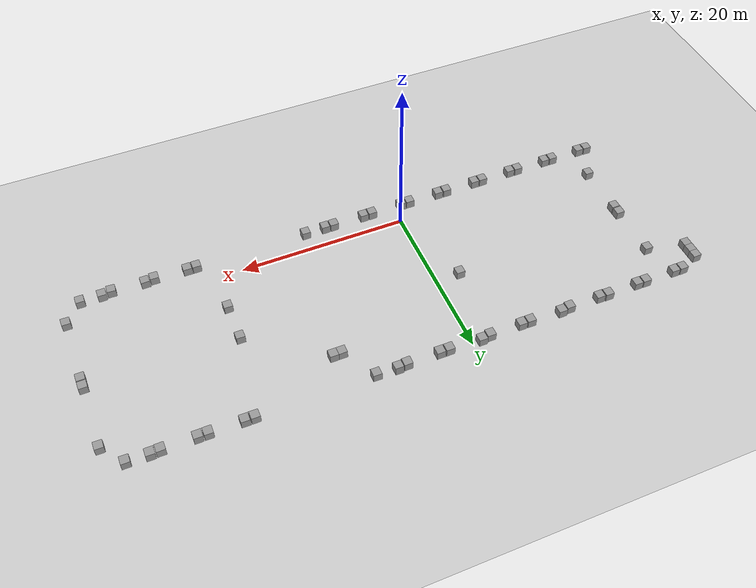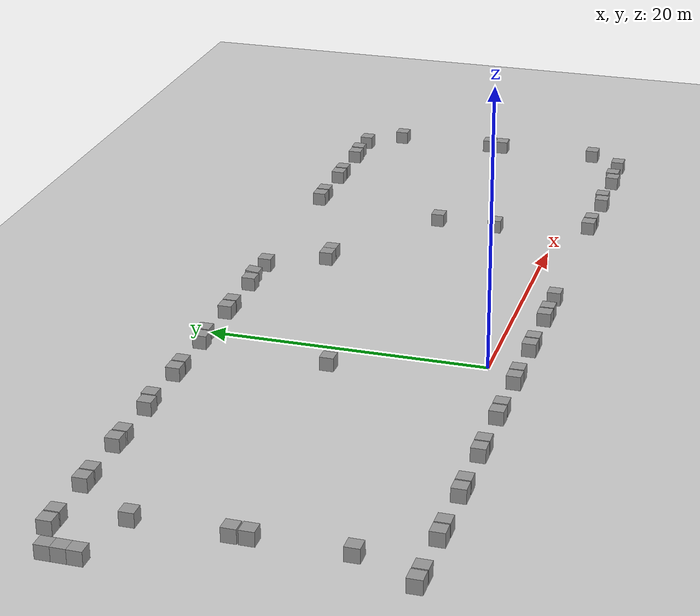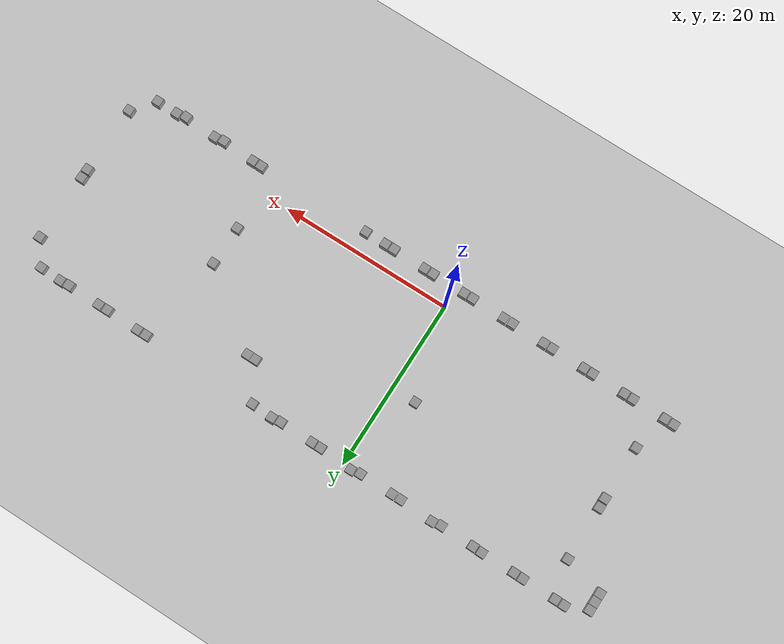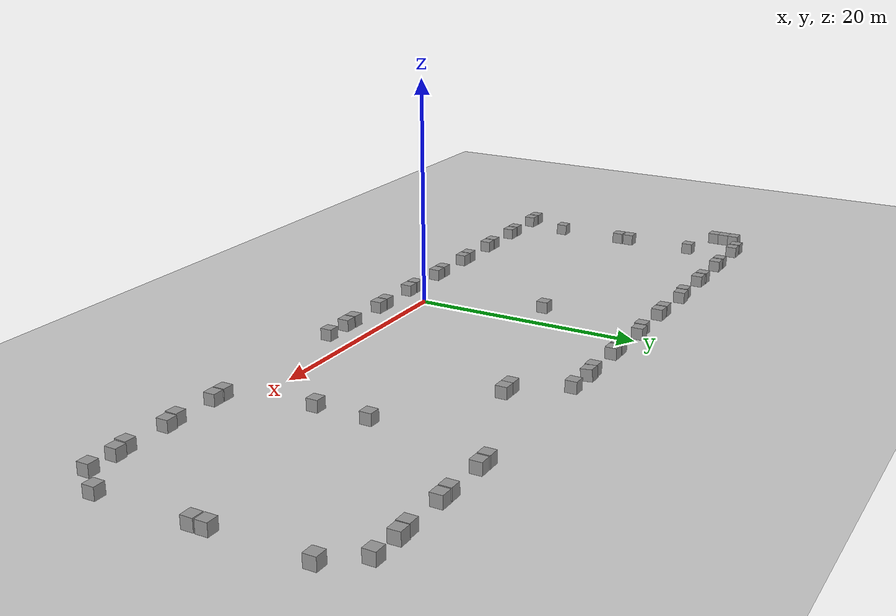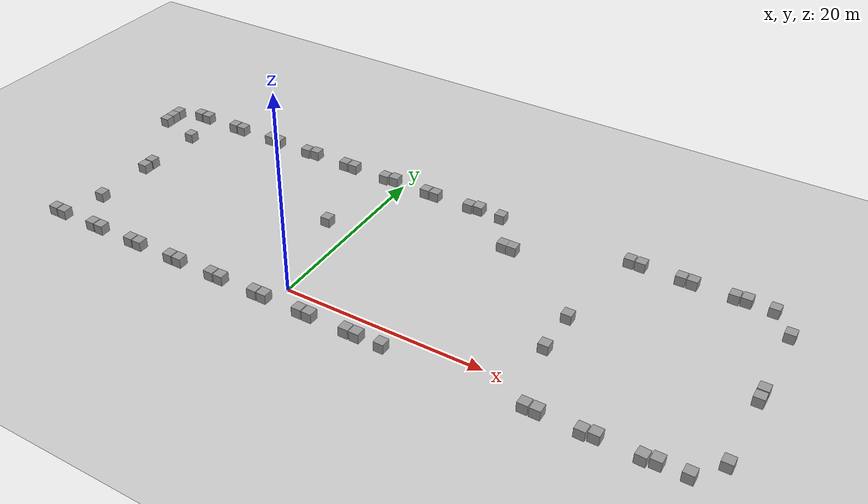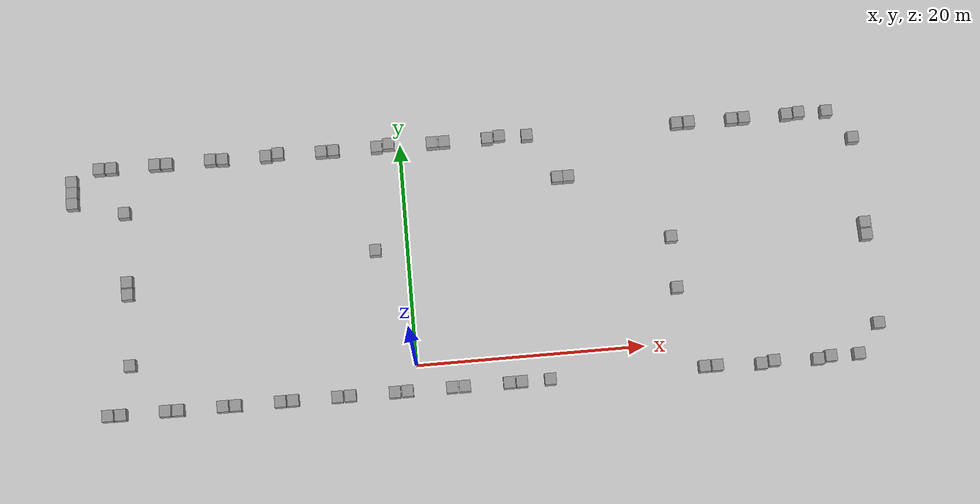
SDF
<sdf version="1.6">
 <world name="default">
  <physics name="default_physics" default="0" type="ode">
   <max_step_size>0.01</max_step_size>
   <real_time_factor>1</real_time_factor>
   <real_time_update_rate>100</real_time_update_rate>
  </physics>
  <model name="ground_plane">
   <static>1</static>
   <link name="link">
    <collision name="collision">
     <geometry><plane><normal>0 0 1</normal><size>100 100</size></plane></geometry>
     <surface><friction><ode><mu>100</mu><mu2>50</mu2></ode></friction></surface>
    </collision>
    <visual name="visual">
     <cast_shadows>0</cast_shadows>
     <geometry><plane><normal>0 0 1</normal><size>100 100</size></plane></geometry>
     <material>
      <script><uri>file://media/materials/scripts/gazebo.material</uri><name>Gazebo/Grey</name></script>
     </material>
    </visual>
   </link>
  </model>
  <light name="sun" type="directional">
   <pose>0 0 10 0 -0 0</pose>
   <diffuse>0.8 0.8 0.8 1</diffuse>
   <specular>0.1 0.1 0.1 1</specular>
   <attenuation>
    <range>1000</range>
    <constant>0.9</constant>
    <linear>0.01</linear>
    <quadratic>0.001</quadratic>
   </attenuation>
   <direction>-0.5 0.5 -1</direction>
  </light>
  <gravity>0 0 -9.8</gravity>
  <magnetic_field>6e-06 2.3e-05 -4.2e-05</magnetic_field>
  <atmosphere type="adiabatic"/>
  <scene><ambient>0.4 0.4 0.4 1</ambient><background>0.7 0.7 0.7 1</background><shadows>1</shadows></scene>
  <spherical_coordinates>
   <surface_model>EARTH_WGS84</surface_model>
   <latitude_deg>0</latitude_deg>
   <longitude_deg>0</longitude_deg>
   <elevation>0</elevation>
   <heading_deg>0</heading_deg>
  </spherical_coordinates>
  <model name="unit_box_0">
   <pose>2.89414 -2.27476 0.499998 -2e-06 -3e-06 -3.1e-05</pose>
   <link name="link">
    <inertial>
     <mass>1</mass>
     <inertia>
      <ixx>0.166667</ixx>
      <ixy>0</ixy>
      <ixz>0</ixz>
      <iyy>0.166667</iyy>
      <iyz>0</iyz>
      <izz>0.166667</izz>
     </inertia>
    </inertial>
    <collision name="collision"><geometry><box><size>1 1 1</size></box></geometry></collision>
    <visual name="visual">
     <geometry><box><size>1 1 1</size></box></geometry>
     <material>
      <script><name>Gazebo/Grey</name><uri>file://media/materials/scripts/gazebo.material</uri></script>
     </material>
    </visual>
   </link>
  </model>
  <model name="unit_box_1">
   <pose>3.99385 -2.2764 0.499997 0 -5e-06 9e-05</pose>
   <link name="link">
    <inertial>
     <mass>1</mass>
     <inertia>
      <ixx>0.166667</ixx>
      <ixy>0</ixy>
      <ixz>0</ixz>
      <iyy>0.166667</iyy>
      <iyz>0</iyz>
      <izz>0.166667</izz>
     </inertia>
    </inertial>
    <collision name="collision"><geometry><box><size>1 1 1</size></box></geometry></collision>
    <visual name="visual">
     <geometry><box><size>1 1 1</size></box></geometry>
     <material>
      <script><name>Gazebo/Grey</name><uri>file://media/materials/scripts/gazebo.material</uri></script>
     </material>
    </visual>
   </link>
  </model>
  <model name="unit_box_2">
   <pose>7.85526 -2.28399 0.5 0 -2e-06 6e-06</pose>
   <link name="link">
    <inertial>
     <mass>1</mass>
     <inertia>
      <ixx>0.166667</ixx>
      <ixy>0</ixy>
      <ixz>0</ixz>
      <iyy>0.166667</iyy>
      <iyz>0</iyz>
      <izz>0.166667</izz>
     </inertia>
    </inertial>
    <collision name="collision"><geometry><box><size>1 1 1</size></box></geometry></collision>
    <visual name="visual">
     <geometry><box><size>1 1 1</size></box></geometry>
     <material>
      <script><name>Gazebo/Grey</name><uri>file://media/materials/scripts/gazebo.material</uri></script>
     </material>
    </visual>
   </link>
  </model>
  <model name="unit_box_3">
   <pose>8.95581 -2.282 0.5 0 1e-06 0</pose>
   <link name="link">
    <inertial>
     <mass>1</mass>
     <inertia>
      <ixx>0.166667</ixx>
      <ixy>0</ixy>
      <ixz>0</ixz>
      <iyy>0.166667</iyy>
      <iyz>0</iyz>
      <izz>0.166667</izz>
     </inertia>
    </inertial>
    <collision name="collision"><geometry><box><size>1 1 1</size></box></geometry></collision>
    <visual name="visual">
     <geometry><box><size>1 1 1</size></box></geometry>
     <material>
      <script><name>Gazebo/Grey</name><uri>file://media/materials/scripts/gazebo.material</uri></script>
     </material>
    </visual>
   </link>
  </model>
  <model name="unit_box_4">
   <pose>11.4368 -2.27792 0.5 -1e-06 -1e-06 6e-06</pose>
   <link name="link">
    <inertial>
     <mass>1</mass>
     <inertia>
      <ixx>0.166667</ixx>
      <ixy>0</ixy>
      <ixz>0</ixz>
      <iyy>0.166667</iyy>
      <iyz>0</iyz>
      <izz>0.166667</izz>
     </inertia>
    </inertial>
    <collision name="collision"><geometry><box><size>1 1 1</size></box></geometry></collision>
    <visual name="visual">
     <geometry><box><size>1 1 1</size></box></geometry>
     <material>
      <script><name>Gazebo/Grey</name><uri>file://media/materials/scripts/gazebo.material</uri></script>
     </material>
    </visual>
   </link>
  </model>
  <model name="unit_box_5">
   <pose>24.8845 -2.27564 0.49907 -0 0.0001 -0.001533</pose>
   <link name="link">
    <inertial>
     <mass>1</mass>
     <inertia>
      <ixx>0.166667</ixx>
      <ixy>0</ixy>
      <ixz>0</ixz>
      <iyy>0.166667</iyy>
      <iyz>0</iyz>
      <izz>0.166667</izz>
     </inertia>
    </inertial>
    <collision name="collision"><geometry><box><size>1 1 1</size></box></geometry></collision>
    <visual name="visual">
     <geometry><box><size>1 1 1</size></box></geometry>
     <material>
      <script><name>Gazebo/Grey</name><uri>file://media/materials/scripts/gazebo.material</uri></script>
     </material>
    </visual>
   </link>
  </model>
  <model name="unit_box_6">
   <pose>25.9874 -2.28188 0.499999 0 -2e-06 9e-06</pose>
   <link name="link">
    <inertial>
     <mass>1</mass>
     <inertia>
      <ixx>0.166667</ixx>
      <ixy>0</ixy>
      <ixz>0</ixz>
      <iyy>0.166667</iyy>
      <iyz>0</iyz>
      <izz>0.166667</izz>
     </inertia>
    </inertial>
    <collision name="collision"><geometry><box><size>1 1 1</size></box></geometry></collision>
    <visual name="visual">
     <geometry><box><size>1 1 1</size></box></geometry>
     <material>
      <script><name>Gazebo/Grey</name><uri>file://media/materials/scripts/gazebo.material</uri></script>
     </material>
    </visual>
   </link>
  </model>
  <model name="unit_box_7_2">
   <pose>29.8374 -2.43936 0.5 0 0 -0.015892</pose>
   <link name="link">
    <inertial>
     <mass>1</mass>
     <inertia>
      <ixx>0.166667</ixx>
      <ixy>0</ixy>
      <ixz>0</ixz>
      <iyy>0.166667</iyy>
      <iyz>0</iyz>
      <izz>0.166667</izz>
     </inertia>
    </inertial>
    <collision name="collision"><geometry><box><size>1 1 1</size></box></geometry></collision>
    <visual name="visual">
     <geometry><box><size>1 1 1</size></box></geometry>
     <material>
      <script><name>Gazebo/Grey</name><uri>file://media/materials/scripts/gazebo.material</uri></script>
     </material>
    </visual>
   </link>
  </model>
  <model name="unit_box_7_3">
   <pose>30.9494 -2.27854 0.5 0 0 -2e-06</pose>
   <link name="link">
    <inertial>
     <mass>1</mass>
     <inertia>
      <ixx>0.166667</ixx>
      <ixy>0</ixy>
      <ixz>0</ixz>
      <iyy>0.166667</iyy>
      <iyz>0</iyz>
      <izz>0.166667</izz>
     </inertia>
    </inertial>
    <collision name="collision"><geometry><box><size>1 1 1</size></box></geometry></collision>
    <visual name="visual">
     <geometry><box><size>1 1 1</size></box></geometry>
     <material>
      <script><name>Gazebo/Grey</name><uri>file://media/materials/scripts/gazebo.material</uri></script>
     </material>
    </visual>
   </link>
  </model>
  <model name="unit_box_7_6">
   <pose>34.7853 -2.45417 0.49912 0 0 -0.05345</pose>
   <link name="link">
    <inertial>
     <mass>1</mass>
     <inertia>
      <ixx>0.166667</ixx>
      <ixy>0</ixy>
      <ixz>0</ixz>
      <iyy>0.166667</iyy>
      <iyz>0</iyz>
      <izz>0.166667</izz>
     </inertia>
    </inertial>
    <collision name="collision"><geometry><box><size>1 1 1</size></box></geometry></collision>
    <visual name="visual">
     <geometry><box><size>1 1 1</size></box></geometry>
     <material>
      <script><name>Gazebo/Grey</name><uri>file://media/materials/scripts/gazebo.material</uri></script>
     </material>
    </visual>
   </link>
  </model>
  <model name="unit_box_7_7">
   <pose>35.9114 -2.27418 0.499999 -5e-06 6e-06 3.6e-05</pose>
   <link name="link">
    <inertial>
     <mass>1</mass>
     <inertia>
      <ixx>0.166667</ixx>
      <ixy>0</ixy>
      <ixz>0</ixz>
      <iyy>0.166667</iyy>
      <iyz>0</iyz>
      <izz>0.166667</izz>
     </inertia>
    </inertial>
    <collision name="collision"><geometry><box><size>1 1 1</size></box></geometry></collision>
    <visual name="visual">
     <geometry><box><size>1 1 1</size></box></geometry>
     <material>
      <script><name>Gazebo/Grey</name><uri>file://media/materials/scripts/gazebo.material</uri></script>
     </material>
    </visual>
   </link>
  </model>
  <model name="unit_box_7_8">
   <pose>38.3938 -2.27334 0.499995 -1.8e-05 2.3e-05 7e-05</pose>
   <link name="link">
    <inertial>
     <mass>1</mass>
     <inertia>
      <ixx>0.166667</ixx>
      <ixy>0</ixy>
      <ixz>0</ixz>
      <iyy>0.166667</iyy>
      <iyz>0</iyz>
      <izz>0.166667</izz>
     </inertia>
    </inertial>
    <collision name="collision"><geometry><box><size>1 1 1</size></box></geometry></collision>
    <visual name="visual">
     <geometry><box><size>1 1 1</size></box></geometry>
     <material>
      <script><name>Gazebo/Grey</name><uri>file://media/materials/scripts/gazebo.material</uri></script>
     </material>
    </visual>
   </link>
  </model>
  <model name="unit_box_7_9">
   <pose>-0.968185 -2.27984 0.5 -1e-06 -2e-06 4e-06</pose>
   <link name="link">
    <inertial>
     <mass>1</mass>
     <inertia>
      <ixx>0.166667</ixx>
      <ixy>0</ixy>
      <ixz>0</ixz>
      <iyy>0.166667</iyy>
      <iyz>0</iyz>
      <izz>0.166667</izz>
     </inertia>
    </inertial>
    <collision name="collision"><geometry><box><size>1 1 1</size></box></geometry></collision>
    <visual name="visual">
     <geometry><box><size>1 1 1</size></box></geometry>
     <material>
      <script><name>Gazebo/Grey</name><uri>file://media/materials/scripts/gazebo.material</uri></script>
     </material>
    </visual>
   </link>
  </model>
  <model name="unit_box_7_10">
   <pose>-2.06801 -2.29766 0.500109 0.000114 -0.000252 -0.004685</pose>
   <link name="link">
    <inertial>
     <mass>1</mass>
     <inertia>
      <ixx>0.166667</ixx>
      <ixy>0</ixy>
      <ixz>0</ixz>
      <iyy>0.166667</iyy>
      <iyz>0</iyz>
      <izz>0.166667</izz>
     </inertia>
    </inertial>
    <collision name="collision"><geometry><box><size>1 1 1</size></box></geometry></collision>
    <visual name="visual">
     <geometry><box><size>1 1 1</size></box></geometry>
     <material>
      <script><name>Gazebo/Grey</name><uri>file://media/materials/scripts/gazebo.material</uri></script>
     </material>
    </visual>
   </link>
  </model>
  <model name="unit_box_7_11">
   <pose>-5.93018 -2.28111 0.499999 -4e-06 4e-06 2e-05</pose>
   <link name="link">
    <inertial>
     <mass>1</mass>
     <inertia>
      <ixx>0.166667</ixx>
      <ixy>0</ixy>
      <ixz>0</ixz>
      <iyy>0.166667</iyy>
      <iyz>0</iyz>
      <izz>0.166667</izz>
     </inertia>
    </inertial>
    <collision name="collision"><geometry><box><size>1 1 1</size></box></geometry></collision>
    <visual name="visual">
     <geometry><box><size>1 1 1</size></box></geometry>
     <material>
      <script><name>Gazebo/Grey</name><uri>file://media/materials/scripts/gazebo.material</uri></script>
     </material>
    </visual>
   </link>
  </model>
  <model name="unit_box_7_12">
   <pose>-7.04401 -2.28826 0.5 0 0 -0.015754</pose>
   <link name="link">
    <inertial>
     <mass>1</mass>
     <inertia>
      <ixx>0.166667</ixx>
      <ixy>0</ixy>
      <ixz>0</ixz>
      <iyy>0.166667</iyy>
      <iyz>0</iyz>
      <izz>0.166667</izz>
     </inertia>
    </inertial>
    <collision name="collision"><geometry><box><size>1 1 1</size></box></geometry></collision>
    <visual name="visual">
     <geometry><box><size>1 1 1</size></box></geometry>
     <material>
      <script><name>Gazebo/Grey</name><uri>file://media/materials/scripts/gazebo.material</uri></script>
     </material>
    </visual>
   </link>
  </model>
  <model name="unit_box_7_13">
   <pose>-10.8922 -2.27697 0.499998 -3e-06 3e-06 3.8e-05</pose>
   <link name="link">
    <inertial>
     <mass>1</mass>
     <inertia>
      <ixx>0.166667</ixx>
      <ixy>0</ixy>
      <ixz>0</ixz>
      <iyy>0.166667</iyy>
      <iyz>0</iyz>
      <izz>0.166667</izz>
     </inertia>
    </inertial>
    <collision name="collision"><geometry><box><size>1 1 1</size></box></geometry></collision>
    <visual name="visual">
     <geometry><box><size>1 1 1</size></box></geometry>
     <material>
      <script><name>Gazebo/Grey</name><uri>file://media/materials/scripts/gazebo.material</uri></script>
     </material>
    </visual>
   </link>
  </model>
  <model name="unit_box_7_14">
   <pose>-11.9925 -2.28165 0.499998 -6e-06 4e-06 -3.8e-05</pose>
   <link name="link">
    <inertial>
     <mass>1</mass>
     <inertia>
      <ixx>0.166667</ixx>
      <ixy>0</ixy>
      <ixz>0</ixz>
      <iyy>0.166667</iyy>
      <iyz>0</iyz>
      <izz>0.166667</izz>
     </inertia>
    </inertial>
    <collision name="collision"><geometry><box><size>1 1 1</size></box></geometry></collision>
    <visual name="visual">
     <geometry><box><size>1 1 1</size></box></geometry>
     <material>
      <script><name>Gazebo/Grey</name><uri>file://media/materials/scripts/gazebo.material</uri></script>
     </material>
    </visual>
   </link>
  </model>
  <model name="unit_box_7_15">
   <pose>-15.8542 -2.2936 0.5 1e-06 -2e-06 1e-06</pose>
   <link name="link">
    <inertial>
     <mass>1</mass>
     <inertia>
      <ixx>0.166667</ixx>
      <ixy>0</ixy>
      <ixz>0</ixz>
      <iyy>0.166667</iyy>
      <iyz>0</iyz>
      <izz>0.166667</izz>
     </inertia>
    </inertial>
    <collision name="collision"><geometry><box><size>1 1 1</size></box></geometry></collision>
    <visual name="visual">
     <geometry><box><size>1 1 1</size></box></geometry>
     <material>
      <script><name>Gazebo/Grey</name><uri>file://media/materials/scripts/gazebo.material</uri></script>
     </material>
    </visual>
   </link>
  </model>
  <model name="unit_box_7_16">
   <pose>-16.9546 -2.28781 0.499998 -5e-06 8e-06 0.000254</pose>
   <link name="link">
    <inertial>
     <mass>1</mass>
     <inertia>
      <ixx>0.166667</ixx>
      <ixy>0</ixy>
      <ixz>0</ixz>
      <iyy>0.166667</iyy>
      <iyz>0</iyz>
      <izz>0.166667</izz>
     </inertia>
    </inertial>
    <collision name="collision"><geometry><box><size>1 1 1</size></box></geometry></collision>
    <visual name="visual">
     <geometry><box><size>1 1 1</size></box></geometry>
     <material>
      <script><name>Gazebo/Grey</name><uri>file://media/materials/scripts/gazebo.material</uri></script>
     </material>
    </visual>
   </link>
  </model>
  <model name="unit_box_7_17">
   <pose>-20.8162 -2.28676 0.5 -2e-06 2e-06 1.3e-05</pose>
   <link name="link">
    <inertial>
     <mass>1</mass>
     <inertia>
      <ixx>0.166667</ixx>
      <ixy>0</ixy>
      <ixz>0</ixz>
      <iyy>0.166667</iyy>
      <iyz>0</iyz>
      <izz>0.166667</izz>
     </inertia>
    </inertial>
    <collision name="collision"><geometry><box><size>1 1 1</size></box></geometry></collision>
    <visual name="visual">
     <geometry><box><size>1 1 1</size></box></geometry>
     <material>
      <script><name>Gazebo/Grey</name><uri>file://media/materials/scripts/gazebo.material</uri></script>
     </material>
    </visual>
   </link>
  </model>
  <model name="unit_box_7_18">
   <pose>-21.9179 -2.27662 0.499976 -1.5e-05 -5.5e-05 -0.000497</pose>
   <link name="link">
    <inertial>
     <mass>1</mass>
     <inertia>
      <ixx>0.166667</ixx>
      <ixy>0</ixy>
      <ixz>0</ixz>
      <iyy>0.166667</iyy>
      <iyz>0</iyz>
      <izz>0.166667</izz>
     </inertia>
    </inertial>
    <collision name="collision"><geometry><box><size>1 1 1</size></box></geometry></collision>
    <visual name="visual">
     <geometry><box><size>1 1 1</size></box></geometry>
     <material>
      <script><name>Gazebo/Grey</name><uri>file://media/materials/scripts/gazebo.material</uri></script>
     </material>
    </visual>
   </link>
  </model>
  <model name="unit_box_7_19">
   <pose>-25.7782 -2.30036 0.499999 -0 -2e-06 8e-06</pose>
   <link name="link">
    <inertial>
     <mass>1</mass>
     <inertia>
      <ixx>0.166667</ixx>
      <ixy>0</ixy>
      <ixz>0</ixz>
      <iyy>0.166667</iyy>
      <iyz>0</iyz>
      <izz>0.166667</izz>
     </inertia>
    </inertial>
    <collision name="collision"><geometry><box><size>1 1 1</size></box></geometry></collision>
    <visual name="visual">
     <geometry><box><size>1 1 1</size></box></geometry>
     <material>
      <script><name>Gazebo/Grey</name><uri>file://media/materials/scripts/gazebo.material</uri></script>
     </material>
    </visual>
   </link>
  </model>
  <model name="unit_box_7_20">
   <pose>-26.8783 -2.28054 0.499986 -6e-06 -3.2e-05 -0.000245</pose>
   <link name="link">
    <inertial>
     <mass>1</mass>
     <inertia>
      <ixx>0.166667</ixx>
      <ixy>0</ixy>
      <ixz>0</ixz>
      <iyy>0.166667</iyy>
      <iyz>0</iyz>
      <izz>0.166667</izz>
     </inertia>
    </inertial>
    <collision name="collision"><geometry><box><size>1 1 1</size></box></geometry></collision>
    <visual name="visual">
     <geometry><box><size>1 1 1</size></box></geometry>
     <material>
      <script><name>Gazebo/Grey</name><uri>file://media/materials/scripts/gazebo.material</uri></script>
     </material>
    </visual>
   </link>
  </model>
  <model name="unit_box_7_21">
   <pose>38.4141 19.8154 0.5 0 0 -0.014138</pose>
   <link name="link">
    <inertial>
     <mass>1</mass>
     <inertia>
      <ixx>0.166667</ixx>
      <ixy>0</ixy>
      <ixz>0</ixz>
      <iyy>0.166667</iyy>
      <iyz>0</iyz>
      <izz>0.166667</izz>
     </inertia>
    </inertial>
    <collision name="collision"><geometry><box><size>1 1 1</size></box></geometry></collision>
    <visual name="visual">
     <geometry><box><size>1 1 1</size></box></geometry>
     <material>
      <script><name>Gazebo/Grey</name><uri>file://media/materials/scripts/gazebo.material</uri></script>
     </material>
    </visual>
   </link>
  </model>
  <model name="unit_box_7_22">
   <pose>35.9162 19.8953 0.517978 0.023186 -0.007833 0.000119</pose>
   <link name="link">
    <inertial>
     <mass>1</mass>
     <inertia>
      <ixx>0.166667</ixx>
      <ixy>0</ixy>
      <ixz>0</ixz>
      <iyy>0.166667</iyy>
      <iyz>0</iyz>
      <izz>0.166667</izz>
     </inertia>
    </inertial>
    <collision name="collision"><geometry><box><size>1 1 1</size></box></geometry></collision>
    <visual name="visual">
     <geometry><box><size>1 1 1</size></box></geometry>
     <material>
      <script><name>Gazebo/Grey</name><uri>file://media/materials/scripts/gazebo.material</uri></script>
     </material>
    </visual>
   </link>
  </model>
  <model name="unit_box_7_23">
   <pose>34.8184 19.8166 0.499802 0.000397 -0 0.003717</pose>
   <link name="link">
    <inertial>
     <mass>1</mass>
     <inertia>
      <ixx>0.166667</ixx>
      <ixy>0</ixy>
      <ixz>0</ixz>
      <iyy>0.166667</iyy>
      <iyz>0</iyz>
      <izz>0.166667</izz>
     </inertia>
    </inertial>
    <collision name="collision"><geometry><box><size>1 1 1</size></box></geometry></collision>
    <visual name="visual">
     <geometry><box><size>1 1 1</size></box></geometry>
     <material>
      <script><name>Gazebo/Grey</name><uri>file://media/materials/scripts/gazebo.material</uri></script>
     </material>
    </visual>
   </link>
  </model>
  <model name="unit_box_7_24">
   <pose>30.9698 19.8137 0.499802 -0.000397 -0 -0.003962</pose>
   <link name="link">
    <inertial>
     <mass>1</mass>
     <inertia>
      <ixx>0.166667</ixx>
      <ixy>0</ixy>
      <ixz>0</ixz>
      <iyy>0.166667</iyy>
      <iyz>0</iyz>
      <izz>0.166667</izz>
     </inertia>
    </inertial>
    <collision name="collision"><geometry><box><size>1 1 1</size></box></geometry></collision>
    <visual name="visual">
     <geometry><box><size>1 1 1</size></box></geometry>
     <material>
      <script><name>Gazebo/Grey</name><uri>file://media/materials/scripts/gazebo.material</uri></script>
     </material>
    </visual>
   </link>
  </model>
  <model name="unit_box_7_25">
   <pose>29.8572 19.8018 0.499802 -0.000397 0 0</pose>
   <link name="link">
    <inertial>
     <mass>1</mass>
     <inertia>
      <ixx>0.166667</ixx>
      <ixy>0</ixy>
      <ixz>0</ixz>
      <iyy>0.166667</iyy>
      <iyz>0</iyz>
      <izz>0.166667</izz>
     </inertia>
    </inertial>
    <collision name="collision"><geometry><box><size>1 1 1</size></box></geometry></collision>
    <visual name="visual">
     <geometry><box><size>1 1 1</size></box></geometry>
     <material>
      <script><name>Gazebo/Grey</name><uri>file://media/materials/scripts/gazebo.material</uri></script>
     </material>
    </visual>
   </link>
  </model>
  <model name="unit_box_7_26">
   <pose>25.997 19.8292 0.500161 0.000308 -6e-06 -0.001105</pose>
   <link name="link">
    <inertial>
     <mass>1</mass>
     <inertia>
      <ixx>0.166667</ixx>
      <ixy>0</ixy>
      <ixz>0</ixz>
      <iyy>0.166667</iyy>
      <iyz>0</iyz>
      <izz>0.166667</izz>
     </inertia>
    </inertial>
    <collision name="collision"><geometry><box><size>1 1 1</size></box></geometry></collision>
    <visual name="visual">
     <geometry><box><size>1 1 1</size></box></geometry>
     <material>
      <script><name>Gazebo/Grey</name><uri>file://media/materials/scripts/gazebo.material</uri></script>
     </material>
    </visual>
   </link>
  </model>
  <model name="unit_box_7_27">
   <pose>24.891 19.8211 0.49967 0.00066 -0 0.005886</pose>
   <link name="link">
    <inertial>
     <mass>1</mass>
     <inertia>
      <ixx>0.166667</ixx>
      <ixy>0</ixy>
      <ixz>0</ixz>
      <iyy>0.166667</iyy>
      <iyz>0</iyz>
      <izz>0.166667</izz>
     </inertia>
    </inertial>
    <collision name="collision"><geometry><box><size>1 1 1</size></box></geometry></collision>
    <visual name="visual">
     <geometry><box><size>1 1 1</size></box></geometry>
     <material>
      <script><name>Gazebo/Grey</name><uri>file://media/materials/scripts/gazebo.material</uri></script>
     </material>
    </visual>
   </link>
  </model>
  <model name="unit_box_7_28">
   <pose>11.3868 19.8126 0.499802 0.000397 -0 1e-06</pose>
   <link name="link">
    <inertial>
     <mass>1</mass>
     <inertia>
      <ixx>0.166667</ixx>
      <ixy>0</ixy>
      <ixz>0</ixz>
      <iyy>0.166667</iyy>
      <iyz>0</iyz>
      <izz>0.166667</izz>
     </inertia>
    </inertial>
    <collision name="collision"><geometry><box><size>1 1 1</size></box></geometry></collision>
    <visual name="visual">
     <geometry><box><size>1 1 1</size></box></geometry>
     <material>
      <script><name>Gazebo/Grey</name><uri>file://media/materials/scripts/gazebo.material</uri></script>
     </material>
    </visual>
   </link>
  </model>
  <model name="unit_box_7_30">
   <pose>7.80592 19.8144 0.500058 0.000812 0.000693 0.000206</pose>
   <link name="link">
    <inertial>
     <mass>1</mass>
     <inertia>
      <ixx>0.166667</ixx>
      <ixy>0</ixy>
      <ixz>0</ixz>
      <iyy>0.166667</iyy>
      <iyz>0</iyz>
      <izz>0.166667</izz>
     </inertia>
    </inertial>
    <collision name="collision"><geometry><box><size>1 1 1</size></box></geometry></collision>
    <visual name="visual">
     <geometry><box><size>1 1 1</size></box></geometry>
     <material>
      <script><name>Gazebo/Grey</name><uri>file://media/materials/scripts/gazebo.material</uri></script>
     </material>
    </visual>
   </link>
  </model>
  <model name="unit_box_7_31">
   <pose>8.90364 19.9587 0.544649 0.092013 -0.002541 -0.000446</pose>
   <link name="link">
    <inertial>
     <mass>1</mass>
     <inertia>
      <ixx>0.166667</ixx>
      <ixy>0</ixy>
      <ixz>0</ixz>
      <iyy>0.166667</iyy>
      <iyz>0</iyz>
      <izz>0.166667</izz>
     </inertia>
    </inertial>
    <collision name="collision"><geometry><box><size>1 1 1</size></box></geometry></collision>
    <visual name="visual">
     <geometry><box><size>1 1 1</size></box></geometry>
     <material>
      <script><name>Gazebo/Grey</name><uri>file://media/materials/scripts/gazebo.material</uri></script>
     </material>
    </visual>
   </link>
  </model>
  <model name="unit_box_7_32">
   <pose>3.94384 19.8121 0.499802 0.000397 0 -2e-06</pose>
   <link name="link">
    <inertial>
     <mass>1</mass>
     <inertia>
      <ixx>0.166667</ixx>
      <ixy>0</ixy>
      <ixz>0</ixz>
      <iyy>0.166667</iyy>
      <iyz>0</iyz>
      <izz>0.166667</izz>
     </inertia>
    </inertial>
    <collision name="collision"><geometry><box><size>1 1 1</size></box></geometry></collision>
    <visual name="visual">
     <geometry><box><size>1 1 1</size></box></geometry>
     <material>
      <script><name>Gazebo/Grey</name><uri>file://media/materials/scripts/gazebo.material</uri></script>
     </material>
    </visual>
   </link>
  </model>
  <model name="unit_box_7_33">
   <pose>2.84368 19.8131 0.499994 2e-06 -9e-06 0.00016</pose>
   <link name="link">
    <inertial>
     <mass>1</mass>
     <inertia>
      <ixx>0.166667</ixx>
      <ixy>0</ixy>
      <ixz>0</ixz>
      <iyy>0.166667</iyy>
      <iyz>0</iyz>
      <izz>0.166667</izz>
     </inertia>
    </inertial>
    <collision name="collision"><geometry><box><size>1 1 1</size></box></geometry></collision>
    <visual name="visual">
     <geometry><box><size>1 1 1</size></box></geometry>
     <material>
      <script><name>Gazebo/Grey</name><uri>file://media/materials/scripts/gazebo.material</uri></script>
     </material>
    </visual>
   </link>
  </model>
  <model name="unit_box_7_34">
   <pose>-1.01806 20.0152 0.49967 0.00066 -0 0.000128</pose>
   <link name="link">
    <inertial>
     <mass>1</mass>
     <inertia>
      <ixx>0.166667</ixx>
      <ixy>0</ixy>
      <ixz>0</ixz>
      <iyy>0.166667</iyy>
      <iyz>0</iyz>
      <izz>0.166667</izz>
     </inertia>
    </inertial>
    <collision name="collision"><geometry><box><size>1 1 1</size></box></geometry></collision>
    <visual name="visual">
     <geometry><box><size>1 1 1</size></box></geometry>
     <material>
      <script><name>Gazebo/Grey</name><uri>file://media/materials/scripts/gazebo.material</uri></script>
     </material>
    </visual>
   </link>
  </model>
  <model name="unit_box_7_35">
   <pose>-2.1182 19.8278 0.499802 0.000397 0 -1e-06</pose>
   <link name="link">
    <inertial>
     <mass>1</mass>
     <inertia>
      <ixx>0.166667</ixx>
      <ixy>0</ixy>
      <ixz>0</ixz>
      <iyy>0.166667</iyy>
      <iyz>0</iyz>
      <izz>0.166667</izz>
     </inertia>
    </inertial>
    <collision name="collision"><geometry><box><size>1 1 1</size></box></geometry></collision>
    <visual name="visual">
     <geometry><box><size>1 1 1</size></box></geometry>
     <material>
      <script><name>Gazebo/Grey</name><uri>file://media/materials/scripts/gazebo.material</uri></script>
     </material>
    </visual>
   </link>
  </model>
  <model name="unit_box_7_36">
   <pose>-5.98043 19.8141 0.500068 0.000273 -8.9e-05 -9.1e-05</pose>
   <link name="link">
    <inertial>
     <mass>1</mass>
     <inertia>
      <ixx>0.166667</ixx>
      <ixy>0</ixy>
      <ixz>0</ixz>
      <iyy>0.166667</iyy>
      <iyz>0</iyz>
      <izz>0.166667</izz>
     </inertia>
    </inertial>
    <collision name="collision"><geometry><box><size>1 1 1</size></box></geometry></collision>
    <visual name="visual">
     <geometry><box><size>1 1 1</size></box></geometry>
     <material>
      <script><name>Gazebo/Grey</name><uri>file://media/materials/scripts/gazebo.material</uri></script>
     </material>
    </visual>
   </link>
  </model>
  <model name="unit_box_7_37">
   <pose>-7.08439 19.8135 0.499802 -0.000397 -0 0.000665</pose>
   <link name="link">
    <inertial>
     <mass>1</mass>
     <inertia>
      <ixx>0.166667</ixx>
      <ixy>0</ixy>
      <ixz>0</ixz>
      <iyy>0.166667</iyy>
      <iyz>0</iyz>
      <izz>0.166667</izz>
     </inertia>
    </inertial>
    <collision name="collision"><geometry><box><size>1 1 1</size></box></geometry></collision>
    <visual name="visual">
     <geometry><box><size>1 1 1</size></box></geometry>
     <material>
      <script><name>Gazebo/Grey</name><uri>file://media/materials/scripts/gazebo.material</uri></script>
     </material>
    </visual>
   </link>
  </model>
  <model name="unit_box_7_38">
   <pose>-10.9421 19.9641 0.500002 -4.6e-05 -4e-06 0.000284</pose>
   <link name="link">
    <inertial>
     <mass>1</mass>
     <inertia>
      <ixx>0.166667</ixx>
      <ixy>0</ixy>
      <ixz>0</ixz>
      <iyy>0.166667</iyy>
      <iyz>0</iyz>
      <izz>0.166667</izz>
     </inertia>
    </inertial>
    <collision name="collision"><geometry><box><size>1 1 1</size></box></geometry></collision>
    <visual name="visual">
     <geometry><box><size>1 1 1</size></box></geometry>
     <material>
      <script><name>Gazebo/Grey</name><uri>file://media/materials/scripts/gazebo.material</uri></script>
     </material>
    </visual>
   </link>
  </model>
  <model name="unit_box_7_39">
   <pose>-12.0476 19.8061 0.49967 0.00066 -0 0.001056</pose>
   <link name="link">
    <inertial>
     <mass>1</mass>
     <inertia>
      <ixx>0.166667</ixx>
      <ixy>0</ixy>
      <ixz>0</ixz>
      <iyy>0.166667</iyy>
      <iyz>0</iyz>
      <izz>0.166667</izz>
     </inertia>
    </inertial>
    <collision name="collision"><geometry><box><size>1 1 1</size></box></geometry></collision>
    <visual name="visual">
     <geometry><box><size>1 1 1</size></box></geometry>
     <material>
      <script><name>Gazebo/Grey</name><uri>file://media/materials/scripts/gazebo.material</uri></script>
     </material>
    </visual>
   </link>
  </model>
  <model name="unit_box_7_40">
   <pose>-15.896 19.8216 0.49967 -0.00066 -0 -0.005791</pose>
   <link name="link">
    <inertial>
     <mass>1</mass>
     <inertia>
      <ixx>0.166667</ixx>
      <ixy>0</ixy>
      <ixz>0</ixz>
      <iyy>0.166667</iyy>
      <iyz>0</iyz>
      <izz>0.166667</izz>
     </inertia>
    </inertial>
    <collision name="collision"><geometry><box><size>1 1 1</size></box></geometry></collision>
    <visual name="visual">
     <geometry><box><size>1 1 1</size></box></geometry>
     <material>
      <script><name>Gazebo/Grey</name><uri>file://media/materials/scripts/gazebo.material</uri></script>
     </material>
    </visual>
   </link>
  </model>
  <model name="unit_box_7_41">
   <pose>-17.002 19.8746 0.502352 -0.005079 0.000695 0.001435</pose>
   <link name="link">
    <inertial>
     <mass>1</mass>
     <inertia>
      <ixx>0.166667</ixx>
      <ixy>0</ixy>
      <ixz>0</ixz>
      <iyy>0.166667</iyy>
      <iyz>0</iyz>
      <izz>0.166667</izz>
     </inertia>
    </inertial>
    <collision name="collision"><geometry><box><size>1 1 1</size></box></geometry></collision>
    <visual name="visual">
     <geometry><box><size>1 1 1</size></box></geometry>
     <material>
      <script><name>Gazebo/Grey</name><uri>file://media/materials/scripts/gazebo.material</uri></script>
     </material>
    </visual>
   </link>
  </model>
  <model name="unit_box_7_42">
   <pose>-20.8646 19.8152 0.499802 -0.000397 -0 -0.003049</pose>
   <link name="link">
    <inertial>
     <mass>1</mass>
     <inertia>
      <ixx>0.166667</ixx>
      <ixy>0</ixy>
      <ixz>0</ixz>
      <iyy>0.166667</iyy>
      <iyz>0</iyz>
      <izz>0.166667</izz>
     </inertia>
    </inertial>
    <collision name="collision"><geometry><box><size>1 1 1</size></box></geometry></collision>
    <visual name="visual">
     <geometry><box><size>1 1 1</size></box></geometry>
     <material>
      <script><name>Gazebo/Grey</name><uri>file://media/materials/scripts/gazebo.material</uri></script>
     </material>
    </visual>
   </link>
  </model>
  <model name="unit_box_7_43">
   <pose>-21.9644 19.8325 0.503545 -0.006396 0.000719 0.000719</pose>
   <link name="link">
    <inertial>
     <mass>1</mass>
     <inertia>
      <ixx>0.166667</ixx>
      <ixy>0</ixy>
      <ixz>0</ixz>
      <iyy>0.166667</iyy>
      <iyz>0</iyz>
      <izz>0.166667</izz>
     </inertia>
    </inertial>
    <collision name="collision"><geometry><box><size>1 1 1</size></box></geometry></collision>
    <visual name="visual">
     <geometry><box><size>1 1 1</size></box></geometry>
     <material>
      <script><name>Gazebo/Grey</name><uri>file://media/materials/scripts/gazebo.material</uri></script>
     </material>
    </visual>
   </link>
  </model>
  <model name="unit_box_7_44">
   <pose>-25.8282 19.817 0.5 0 -0 0</pose>
   <link name="link">
    <inertial>
     <mass>1</mass>
     <inertia>
      <ixx>0.166667</ixx>
      <ixy>0</ixy>
      <ixz>0</ixz>
      <iyy>0.166667</iyy>
      <iyz>0</iyz>
      <izz>0.166667</izz>
     </inertia>
    </inertial>
    <collision name="collision"><geometry><box><size>1 1 1</size></box></geometry></collision>
    <visual name="visual">
     <geometry><box><size>1 1 1</size></box></geometry>
     <material>
      <script><name>Gazebo/Grey</name><uri>file://media/materials/scripts/gazebo.material</uri></script>
     </material>
    </visual>
   </link>
  </model>
  <model name="unit_box_7_45">
   <pose>-26.9283 19.8273 0.499998 1e-06 -4e-06 5.5e-05</pose>
   <link name="link">
    <inertial>
     <mass>1</mass>
     <inertia>
      <ixx>0.166667</ixx>
      <ixy>0</ixy>
      <ixz>0</ixz>
      <iyy>0.166667</iyy>
      <iyz>0</iyz>
      <izz>0.166667</izz>
     </inertia>
    </inertial>
    <collision name="collision"><geometry><box><size>1 1 1</size></box></geometry></collision>
    <visual name="visual">
     <geometry><box><size>1 1 1</size></box></geometry>
     <material>
      <script><name>Gazebo/Grey</name><uri>file://media/materials/scripts/gazebo.material</uri></script>
     </material>
    </visual>
   </link>
  </model>
  <model name="unit_box_7_49">
   <pose>40.4567 0.274608 0.49967 0 0.00066 0.002693</pose>
   <link name="link">
    <inertial>
     <mass>1</mass>
     <inertia>
      <ixx>0.166667</ixx>
      <ixy>0</ixy>
      <ixz>0</ixz>
      <iyy>0.166667</iyy>
      <iyz>0</iyz>
      <izz>0.166667</izz>
     </inertia>
    </inertial>
    <collision name="collision"><geometry><box><size>1 1 1</size></box></geometry></collision>
    <visual name="visual">
     <geometry><box><size>1 1 1</size></box></geometry>
     <material>
      <script><name>Gazebo/Grey</name><uri>file://media/materials/scripts/gazebo.material</uri></script>
     </material>
    </visual>
   </link>
  </model>
  <model name="unit_box_7_50">
   <pose>40.467 8.21802 0.499977 7.1e-05 -2.8e-05 -0.001639</pose>
   <link name="link">
    <inertial>
     <mass>1</mass>
     <inertia>
      <ixx>0.166667</ixx>
      <ixy>0</ixy>
      <ixz>0</ixz>
      <iyy>0.166667</iyy>
      <iyz>0</iyz>
      <izz>0.166667</izz>
     </inertia>
    </inertial>
    <collision name="collision"><geometry><box><size>1 1 1</size></box></geometry></collision>
    <visual name="visual">
     <geometry><box><size>1 1 1</size></box></geometry>
     <material>
      <script><name>Gazebo/Grey</name><uri>file://media/materials/scripts/gazebo.material</uri></script>
     </material>
    </visual>
   </link>
  </model>
  <model name="unit_box_7_51">
   <pose>40.4635 9.31938 0.499966 3e-06 4.3e-05 0.0015</pose>
   <link name="link">
    <inertial>
     <mass>1</mass>
     <inertia>
      <ixx>0.166667</ixx>
      <ixy>0</ixy>
      <ixz>0</ixz>
      <iyy>0.166667</iyy>
      <iyz>0</iyz>
      <izz>0.166667</izz>
     </inertia>
    </inertial>
    <collision name="collision"><geometry><box><size>1 1 1</size></box></geometry></collision>
    <visual name="visual">
     <geometry><box><size>1 1 1</size></box></geometry>
     <material>
      <script><name>Gazebo/Grey</name><uri>file://media/materials/scripts/gazebo.material</uri></script>
     </material>
    </visual>
   </link>
  </model>
  <model name="unit_box_7_52">
   <pose>40.465 17.1643 0.5 0 -0 0</pose>
   <link name="link">
    <inertial>
     <mass>1</mass>
     <inertia>
      <ixx>0.166667</ixx>
      <ixy>0</ixy>
      <ixz>0</ixz>
      <iyy>0.166667</iyy>
      <iyz>0</iyz>
      <izz>0.166667</izz>
     </inertia>
    </inertial>
    <collision name="collision"><geometry><box><size>1 1 1</size></box></geometry></collision>
    <visual name="visual">
     <geometry><box><size>1 1 1</size></box></geometry>
     <material>
      <script><name>Gazebo/Grey</name><uri>file://media/materials/scripts/gazebo.material</uri></script>
     </material>
    </visual>
   </link>
  </model>
  <model name="unit_box_7_53">
   <pose>23.2667 9.46875 0.499999 2e-06 -1e-06 -3.2e-05</pose>
   <link name="link">
    <inertial>
     <mass>1</mass>
     <inertia>
      <ixx>0.166667</ixx>
      <ixy>0</ixy>
      <ixz>0</ixz>
      <iyy>0.166667</iyy>
      <iyz>0</iyz>
      <izz>0.166667</izz>
     </inertia>
    </inertial>
    <collision name="collision"><geometry><box><size>1 1 1</size></box></geometry></collision>
    <visual name="visual">
     <geometry><box><size>1 1 1</size></box></geometry>
     <material>
      <script><name>Gazebo/Grey</name><uri>file://media/materials/scripts/gazebo.material</uri></script>
     </material>
    </visual>
   </link>
  </model>
  <model name="unit_box_7_54">
   <pose>23.2638 4.86897 0.499989 4.8e-05 -2.6e-05 0.000421</pose>
   <link name="link">
    <inertial>
     <mass>1</mass>
     <inertia>
      <ixx>0.166667</ixx>
      <ixy>0</ixy>
      <ixz>0</ixz>
      <iyy>0.166667</iyy>
      <iyz>0</iyz>
      <izz>0.166667</izz>
     </inertia>
    </inertial>
    <collision name="collision"><geometry><box><size>1 1 1</size></box></geometry></collision>
    <visual name="visual">
     <geometry><box><size>1 1 1</size></box></geometry>
     <material>
      <script><name>Gazebo/Grey</name><uri>file://media/materials/scripts/gazebo.material</uri></script>
     </material>
    </visual>
   </link>
  </model>
  <model name="unit_box_7_55">
   <pose>14.7266 15.7148 0.500018 4.2e-05 5.5e-05 -0.000574</pose>
   <link name="link">
    <inertial>
     <mass>1</mass>
     <inertia>
      <ixx>0.166667</ixx>
      <ixy>0</ixy>
      <ixz>0</ixz>
      <iyy>0.166667</iyy>
      <iyz>0</iyz>
      <izz>0.166667</izz>
     </inertia>
    </inertial>
    <collision name="collision"><geometry><box><size>1 1 1</size></box></geometry></collision>
    <visual name="visual">
     <geometry><box><size>1 1 1</size></box></geometry>
     <material>
      <script><name>Gazebo/Grey</name><uri>file://media/materials/scripts/gazebo.material</uri></script>
     </material>
    </visual>
   </link>
  </model>
  <model name="unit_box_7_57">
   <pose>13.7266 15.7165 0.499991 -7e-06 2.8e-05 -0.000607</pose>
   <link name="link">
    <inertial>
     <mass>1</mass>
     <inertia>
      <ixx>0.166667</ixx>
      <ixy>0</ixy>
      <ixz>0</ixz>
      <iyy>0.166667</iyy>
      <iyz>0</iyz>
      <izz>0.166667</izz>
     </inertia>
    </inertial>
    <collision name="collision"><geometry><box><size>1 1 1</size></box></geometry></collision>
    <visual name="visual">
     <geometry><box><size>1 1 1</size></box></geometry>
     <material>
      <script><name>Gazebo/Grey</name><uri>file://media/materials/scripts/gazebo.material</uri></script>
     </material>
    </visual>
   </link>
  </model>
  <model name="unit_box_7_58">
   <pose>-2.87186 10.3974 0.49967 0.00066 -0 0</pose>
   <link name="link">
    <inertial>
     <mass>1</mass>
     <inertia>
      <ixx>0.166667</ixx>
      <ixy>0</ixy>
      <ixz>0</ixz>
      <iyy>0.166667</iyy>
      <iyz>0</iyz>
      <izz>0.166667</izz>
     </inertia>
    </inertial>
    <collision name="collision"><geometry><box><size>1 1 1</size></box></geometry></collision>
    <visual name="visual">
     <geometry><box><size>1 1 1</size></box></geometry>
     <material>
      <script><name>Gazebo/Grey</name><uri>file://media/materials/scripts/gazebo.material</uri></script>
     </material>
    </visual>
   </link>
  </model>
  <model name="unit_box_7_59">
   <pose>-24.813 15.6136 0.499951 6.5e-05 7e-06 -0.001431</pose>
   <link name="link">
    <inertial>
     <mass>1</mass>
     <inertia>
      <ixx>0.166667</ixx>
      <ixy>0</ixy>
      <ixz>0</ixz>
      <iyy>0.166667</iyy>
      <iyz>0</iyz>
      <izz>0.166667</izz>
     </inertia>
    </inertial>
    <collision name="collision"><geometry><box><size>1 1 1</size></box></geometry></collision>
    <visual name="visual">
     <geometry><box><size>1 1 1</size></box></geometry>
     <material>
      <script><name>Gazebo/Grey</name><uri>file://media/materials/scripts/gazebo.material</uri></script>
     </material>
    </visual>
   </link>
  </model>
  <model name="unit_box_7_60">
   <pose>-24.8121 9.31902 0.499993 -2.8e-05 -1.6e-05 0.000574</pose>
   <link name="link">
    <inertial>
     <mass>1</mass>
     <inertia>
      <ixx>0.166667</ixx>
      <ixy>0</ixy>
      <ixz>0</ixz>
      <iyy>0.166667</iyy>
      <iyz>0</iyz>
      <izz>0.166667</izz>
     </inertia>
    </inertial>
    <collision name="collision"><geometry><box><size>1 1 1</size></box></geometry></collision>
    <visual name="visual">
     <geometry><box><size>1 1 1</size></box></geometry>
     <material>
      <script><name>Gazebo/Grey</name><uri>file://media/materials/scripts/gazebo.material</uri></script>
     </material>
    </visual>
   </link>
  </model>
  <model name="unit_box_7_61">
   <pose>-24.8008 8.21876 0.5 0 -0 0</pose>
   <link name="link">
    <inertial>
     <mass>1</mass>
     <inertia>
      <ixx>0.166667</ixx>
      <ixy>0</ixy>
      <ixz>0</ixz>
      <iyy>0.166667</iyy>
      <iyz>0</iyz>
      <izz>0.166667</izz>
     </inertia>
    </inertial>
    <collision name="collision"><geometry><box><size>1 1 1</size></box></geometry></collision>
    <visual name="visual">
     <geometry><box><size>1 1 1</size></box></geometry>
     <material>
      <script><name>Gazebo/Grey</name><uri>file://media/materials/scripts/gazebo.material</uri></script>
     </material>
    </visual>
   </link>
  </model>
  <model name="unit_box_7_62">
   <pose>-24.8139 1.9233 0.499998 7e-06 -4e-06 8.6e-05</pose>
   <link name="link">
    <inertial>
     <mass>1</mass>
     <inertia>
      <ixx>0.166667</ixx>
      <ixy>0</ixy>
      <ixz>0</ixz>
      <iyy>0.166667</iyy>
      <iyz>0</iyz>
      <izz>0.166667</izz>
     </inertia>
    </inertial>
    <collision name="collision"><geometry><box><size>1 1 1</size></box></geometry></collision>
    <visual name="visual">
     <geometry><box><size>1 1 1</size></box></geometry>
     <material>
      <script><name>Gazebo/Grey</name><uri>file://media/materials/scripts/gazebo.material</uri></script>
     </material>
    </visual>
   </link>
  </model>
  <model name="unit_box_7_63">
   <pose>-29.3811 18.8142 0.5 0 0 -1.9e-05</pose>
   <link name="link">
    <inertial>
     <mass>1</mass>
     <inertia>
      <ixx>0.166667</ixx>
      <ixy>0</ixy>
      <ixz>0</ixz>
      <iyy>0.166667</iyy>
      <iyz>0</iyz>
      <izz>0.166667</izz>
     </inertia>
    </inertial>
    <collision name="collision"><geometry><box><size>1 1 1</size></box></geometry></collision>
    <visual name="visual">
     <geometry><box><size>1 1 1</size></box></geometry>
     <material>
      <script><name>Gazebo/Grey</name><uri>file://media/materials/scripts/gazebo.material</uri></script>
     </material>
    </visual>
   </link>
  </model>
  <model name="unit_box_7_64">
   <pose>-29.3829 17.8137 0.499798 -0.000404 -0 7.5e-05</pose>
   <link name="link">
    <inertial>
     <mass>1</mass>
     <inertia>
      <ixx>0.166667</ixx>
      <ixy>0</ixy>
      <ixz>0</ixz>
      <iyy>0.166667</iyy>
      <iyz>0</iyz>
      <izz>0.166667</izz>
     </inertia>
    </inertial>
    <collision name="collision"><geometry><box><size>1 1 1</size></box></geometry></collision>
    <visual name="visual">
     <geometry><box><size>1 1 1</size></box></geometry>
     <material>
      <script><name>Gazebo/Grey</name><uri>file://media/materials/scripts/gazebo.material</uri></script>
     </material>
    </visual>
   </link>
  </model>
  <model name="unit_box_7_65">
   <pose>-29.3834 16.8135 0.49706 0 -0 4.1e-05</pose>
   <link name="link">
    <inertial>
     <mass>1</mass>
     <inertia>
      <ixx>0.166667</ixx>
      <ixy>0</ixy>
      <ixz>0</ixz>
      <iyy>0.166667</iyy>
      <iyz>0</iyz>
      <izz>0.166667</izz>
     </inertia>
    </inertial>
    <collision name="collision"><geometry><box><size>1 1 1</size></box></geometry></collision>
    <visual name="visual">
     <geometry><box><size>1 1 1</size></box></geometry>
     <material>
      <script><name>Gazebo/Grey</name><uri>file://media/materials/scripts/gazebo.material</uri></script>
     </material>
    </visual>
   </link>
  </model>
 </world>
</sdf>
